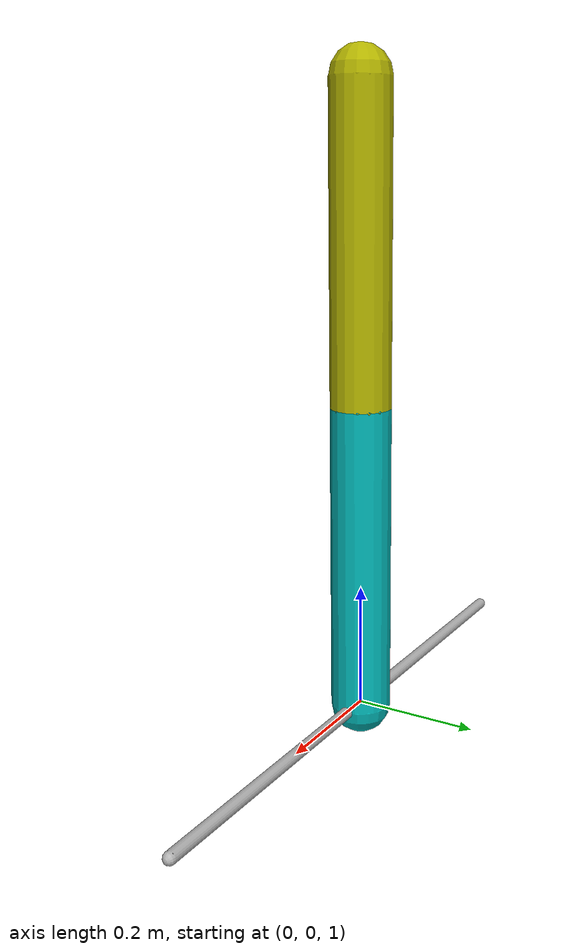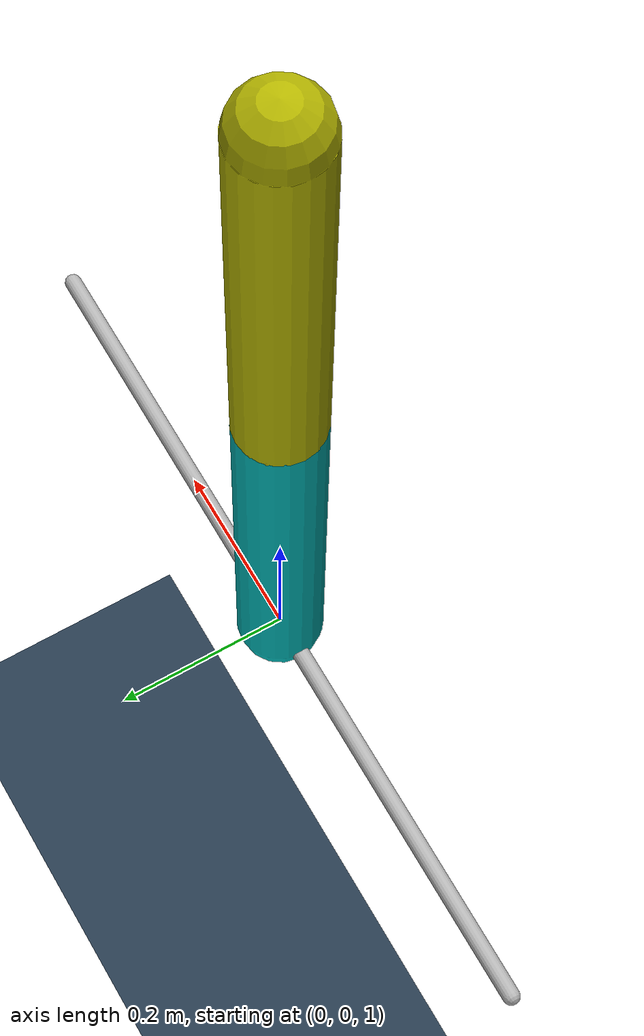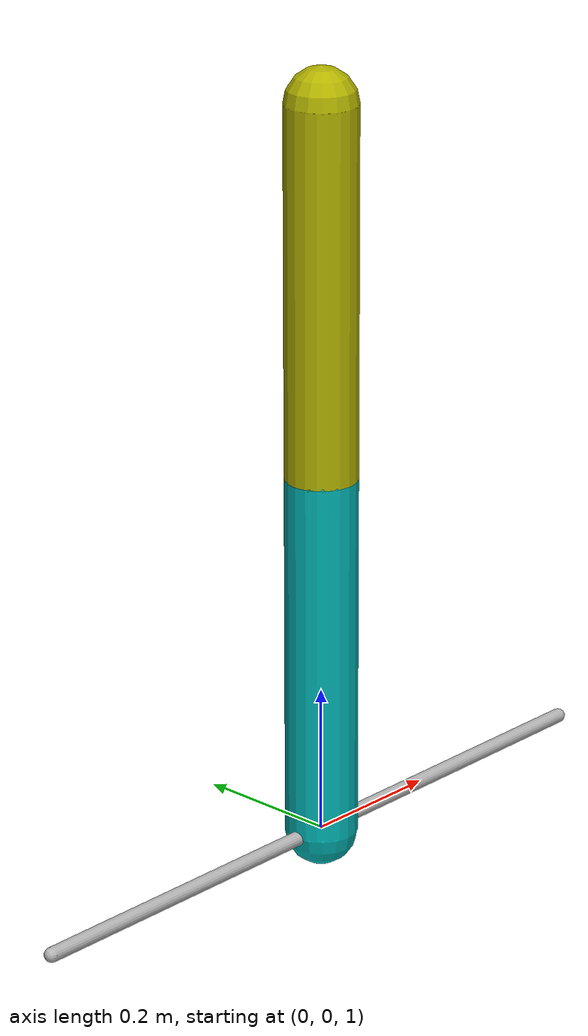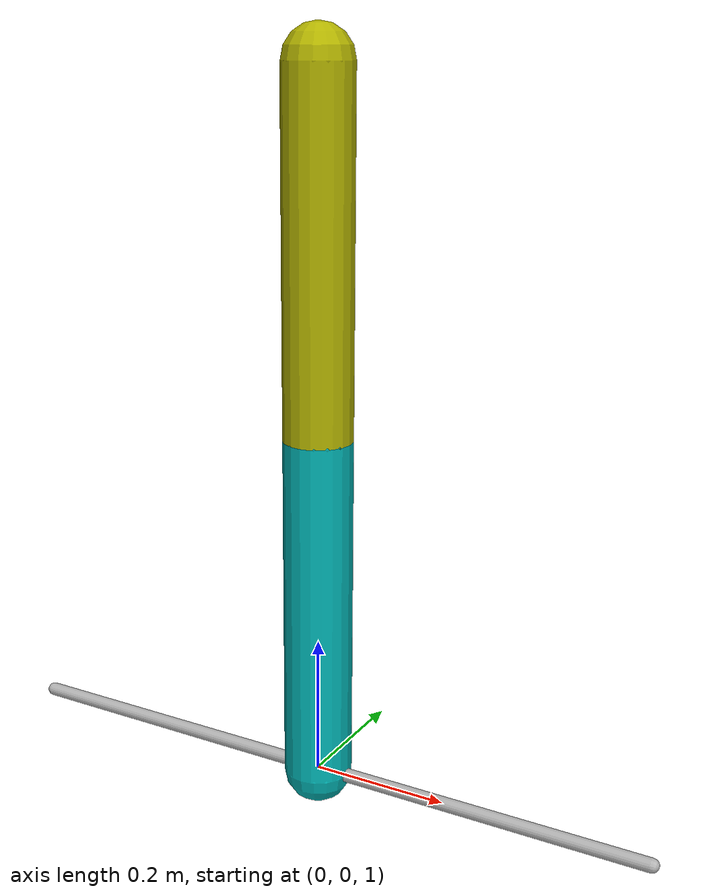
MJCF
<mujoco model="acrobot">
    <compiler inertiafromgeom="true" coordinate="local"/>
    <default>
        <joint damping="1e-1" />
        <motor ctrllimited="true" ctrlrange="-1 1"/>
</default>

    <option timestep="0.01" gravity="0 0 -9.81" >
        <flag contact="disable" energy="disable"/>
    </option>

    <size nstack="4000" />

    <asset>
        <texture name="texplane" type="2d" builtin="checker" rgb1=".2 .3 .4" rgb2=".1 0.15 0.2"
            width="512" height="512"/>
        <material name='MatPlane' reflectance='0.3' texture="texplane" texrepeat="1 1" texuniform="true"/>
    </asset>

    <worldbody>
        <light mode='targetbodycom' target='upper_arm' directional='false' diffuse='.8 .8 .8' specular='0.3 0.3 0.3' pos='0 0 4.0' dir='0 0 -1'/>
        <geom name='floor' pos='0 0 -0.2' size='5 5 .125' type='plane' material="MatPlane" />
        <geom name="rail" type="capsule" fromto="0.5 0 1 -0.5 0 1" size="0.01 0.5" rgba="0.7 0.7 0.7 1" />
        <body name="upper_arm" pos="0 0 1">
            <joint name="shoulder" type="hinge" pos="0 0 0" axis="1 0 0" />
            <geom name="upper_arm" type="capsule" fromto="0 0 0 0 0 0.5" size="0.049 0.3" rgba="0 0.7 0.7 1" />
            <body name="lower_arm" pos="0 0 .5">
                <joint name="elbow" type="hinge" pos="0 0 0" axis="1 0 0"/>
                <geom name="lower_arm" type="capsule" fromto="0 0 0 0 1e-6 0.5" size="0.049 0.3" rgba="0.7 0.7 0 1" />
                <site name="tip" pos="0 0 .5"/>
            </body>
        </body>
    </worldbody>

    <actuator>
       <motor name="shoulder" joint="shoulder" gear="30"/>
        <motor name="elbow" joint="elbow" gear="20"/>
    </actuator>

    <sensor>
        <jointpos name='shoulder_pos' joint='shoulder' />
        <jointpos name='shoulder_pos1' joint='shoulder' />
        <jointpos name='elbow_pos'    joint='elbow' />
        <jointpos name='elbow_pos1'    joint='elbow' />

        <jointvel name='shoulder_vel' joint='shoulder' />
        <jointvel name='elbow_vel'    joint='elbow' />

    </sensor>
</mujoco>
